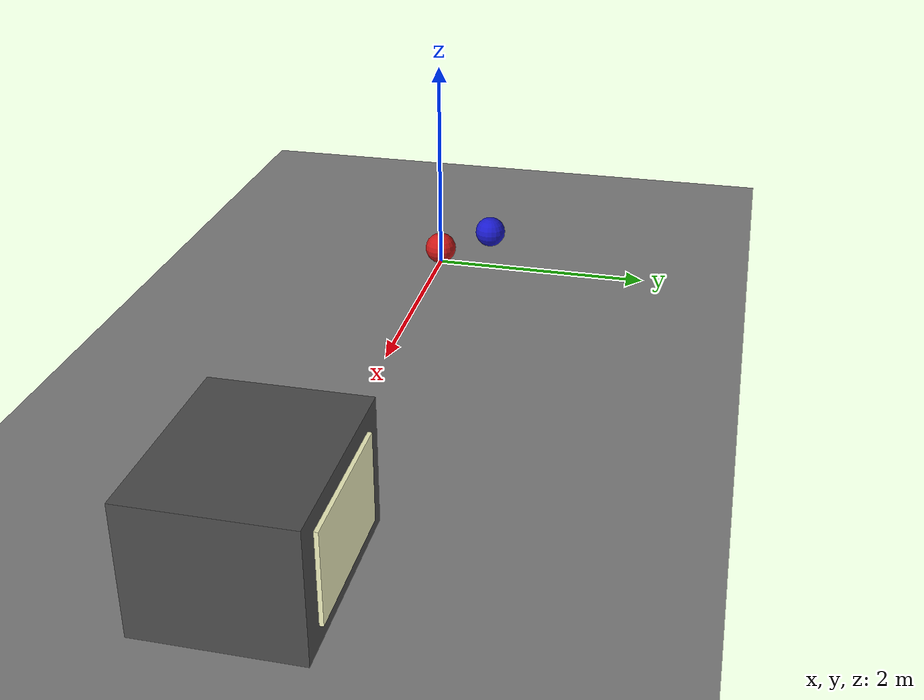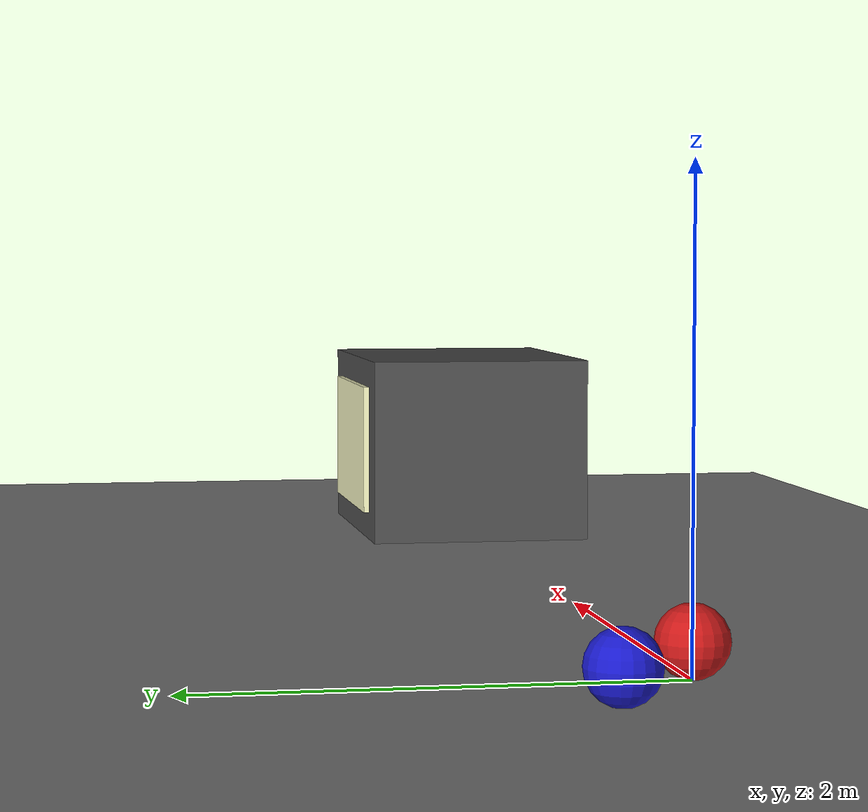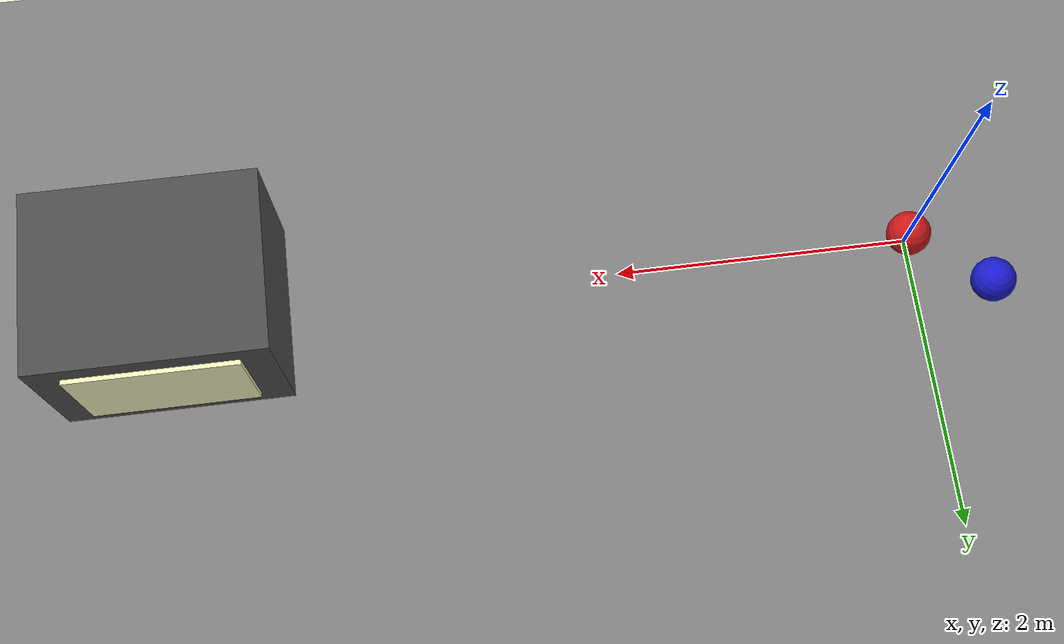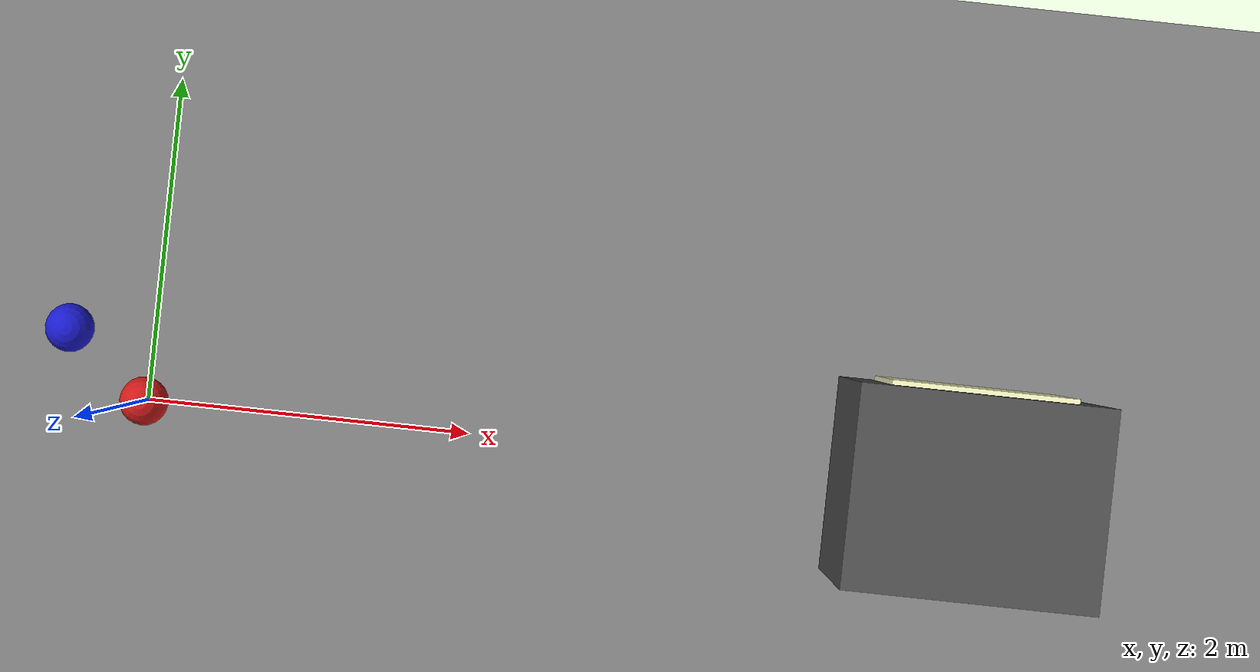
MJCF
<mujoco model="occlusion_corridor_distractor">
  <option timestep="0.002" gravity="0 0 -9.81"/>
  <visual>
    <global offwidth="1280" offheight="720"/>
  </visual>

  <default>
    <geom friction="0.6 0.005 0.03" solref="0.01 1"/>
  </default>

  <worldbody>
    <light diffuse="0.8 0.8 0.8" pos="4 0 4" dir="0 0 -1"/>

    <geom name="floor" type="plane" size="9 3 0.1" pos="6 0 0" rgba="0.5 0.5 0.5 1"
          contype="1" conaffinity="6"/>

    <geom name="wall" type="box" size="0.75 0.6 0.5" pos="5 0 0.5"
          contype="0" conaffinity="0" rgba="0.3 0.3 0.3 1"/>
    <!-- Cosmetic "lit opening" decal -- same treatment, same reasoning,
         same measured-unchanged occlusion geometry as occlusion_
         corridor.xml's own copy of this comment; see that file. -->
    <geom name="wall_opening" type="box" size="0.55 0.02 0.35" pos="5 0.61 0.5"
          contype="0" conaffinity="0" rgba="0.95 0.95 0.75 1"/>

    <body name="ball" pos="0 0 0.15">
      <freejoint/>
      <geom name="ball_geom" type="sphere" size="0.15" mass="0.5" rgba="0.8 0.1 0.1 1"
            condim="6" contype="2" conaffinity="1"/>
    </body>

    <body name="decoy" pos="-0.5 0.4 0.15">
      <freejoint/>
      <geom name="decoy_geom" type="sphere" size="0.15" mass="0.5" rgba="0.1 0.1 0.8 1"
            condim="6" contype="4" conaffinity="1"/>
    </body>
  </worldbody>

  <keyframe>
    <key name="push" qpos="0 0 0.15 1 0 0 0   -0.5 0.4 0.15 1 0 0 0"
                     qvel="4.3 0 0 0 0 0      5.4 0 0 0 0 0"/>
  </keyframe>
</mujoco>
